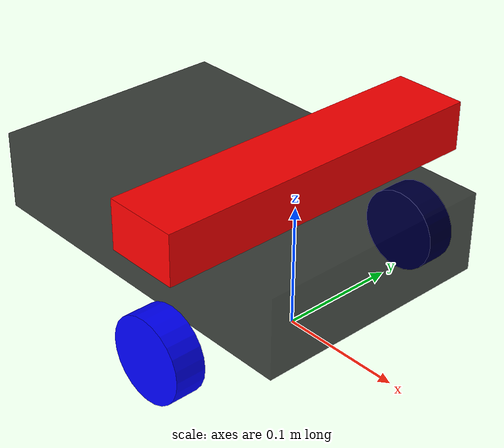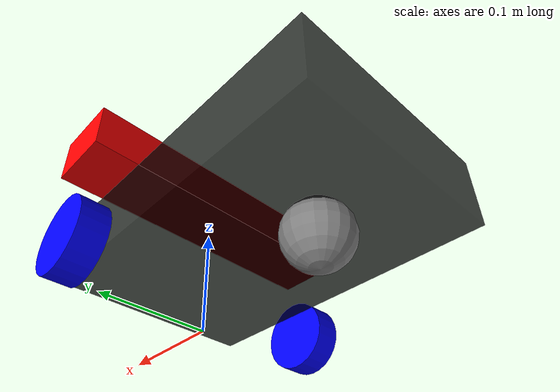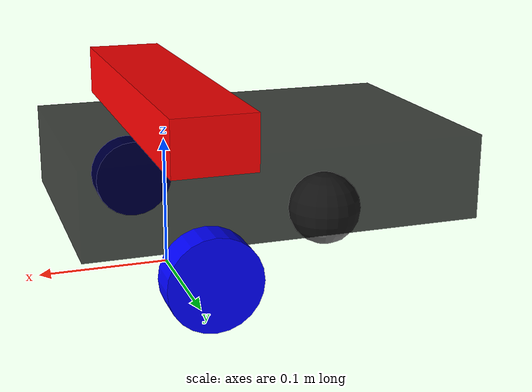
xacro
<?xml version="1.0"?>
<robot name="my_robot" xmlns:xacro="http://www.ros.org/wiki/xacro">
  <xacro:property name="base_length" value="0.3" />
  <xacro:property name="base_width" value="0.2" />
  <xacro:property name="base_height" value="0.065" />
  <xacro:property name="wheel_radius" value="0.034" />
  <xacro:property name="wheel_length" value="0.025" />

  <!-- Gốc tọa độ trên mặt đất -->
  <link name="base_footprint"/>

  <link name="base_link">
    <visual>
      <geometry>
        <box size="${base_length} ${base_width} ${base_height}" />
      </geometry>
      <origin xyz="-0.0675 0 0.0775" rpy="0 0 0" />
      <material name="semi_black">
        <color rgba="0 0 0 0.75" />
      </material>
    </visual>
  </link>

  <joint name="base_footprint_joint" type="fixed">
    <parent link="base_footprint"/>
    <child link="base_link"/>
    <origin xyz="0 0 0" rpy="0 0 0"/>
  </joint>

  <link name="left_wheel">
    <visual>
      <geometry>
        <cylinder length="${wheel_length}" radius="${wheel_radius}" />
      </geometry>
      <origin xyz="0 0.1275 0.034" rpy="1.5708 0 0" />
      <material name="blue">
        <color rgba="0.0 0.0 1.0 1.0" />
      </material>
    </visual>
  </link>

  <link name="right_wheel">
    <visual>
      <geometry>
        <cylinder length="${wheel_length}" radius="${wheel_radius}" />
      </geometry>
      <origin xyz="0 -0.1275 0.034" rpy="1.5708 0 0" />
      <material name="blue">
        <color rgba="0.0 0.0 1.0 1.0" />
      </material>
    </visual>
  </link>

  <link name="front_ball">
    <visual>
      <geometry>
        <sphere radius="0.03" />
      </geometry>
      <origin xyz="-0.135 0 0.03" rpy="0 0 0" />
      <material name="gray">
        <color rgba="0.5 0.5 0.5 1.0" />
      </material>
    </visual>
  </link>

  <!-- Kinect Physical Link -->
  <link name="kinect_link">
    <visual>
      <geometry>
        <box size="0.06 0.28 0.04"/>
      </geometry>
      <origin xyz="0 0 0" rpy="0 0 0" />
      <material name="red">
          <color rgba="1 0 0 1"/>
      </material>
    </visual>
  </link>

  <joint name="kinect_joint" type="fixed">
    <parent link="base_link"/>
    <child link="kinect_link"/>
    <origin xyz="0 0 0.13" rpy="0 0 0"/>
  </joint>

  <!-- Kinect Optical Frame (Z forward, X right, Y down) -->
  <!-- Microsoft Kinect v1 offsets - RGB camera is 1.25cm right of center base (-0.0125 in Y) -->
  <link name="kinect_depth"/>
  <joint name="kinect_depth_joint" type="fixed">
    <parent link="kinect_link"/>
    <child link="kinect_depth"/>
    <origin xyz="0 -0.0125 0" rpy="-1.5708 0 -1.5708"/>
  </joint>

  <joint name="left_wheel_joint" type="fixed">
    <parent link="base_link"/>
    <child link="left_wheel"/>
    <origin xyz="0 0 0" rpy="0 0 0"/>
  </joint>

  <joint name="right_wheel_joint" type="fixed">
    <parent link="base_link"/>
    <child link="right_wheel"/>
    <origin xyz="0 0 0" rpy="0 0 0"/>
  </joint>

  <joint name="front_ball_joint" type="fixed">
    <parent link="base_link"/>
    <child link="front_ball"/>
    <origin xyz="0 0 0" rpy="0 0 0"/>
  </joint>

  <link name="imu_link"/>
  <joint name="imu_joint" type="fixed">
    <parent link="base_link"/>
    <child link="imu_link"/>
    <origin xyz="-0.045 0.03 0.0775" rpy="0 0 0"/>
  </joint>

</robot>
